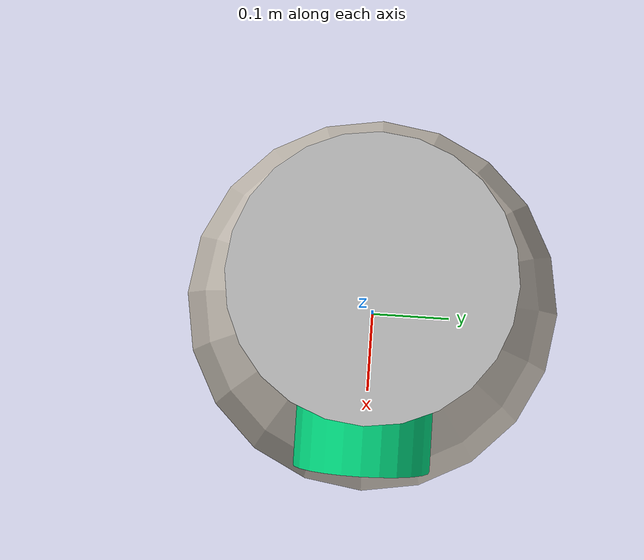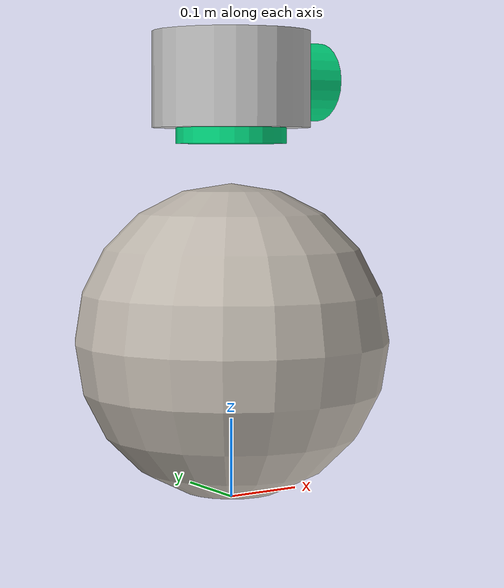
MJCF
<mujoco model="jumping_ball">
  <compiler meshdir="./" texturedir="./" />
  <asset>
    <texture name="body" type="cube" gridsize="2 3" gridlayout = "ULFRBD" file="jumping_ball_body.png"/>
    <material name="body" texture="body"/>
  </asset>

  <default>
    <mesh scale=".01 .01 .01"/>
    <geom contype="1" conaffinity="1" condim="4" friction=".5 .02 .02"/>
    <default class="root">
      <joint pos="0 0 0" limited="false" armature="0" damping="0" stiffness="0"/>
    </default>
    <default class="head">
      <geom type="cylinder" contype="1" conaffinity="1"/>
    </default>
    <default class="rangefinder">
      <site type="capsule" size=".05 .5" rgba="1 0 0 .4" group="4"/>
    </default>
  </default>

  <worldbody>
    <camera name="sideon" pos="0 -10 5" euler="1.0472 0 0" fovy="45" mode="trackcom"/>
    <camera name="float_far" pos="-4 0 2" xyaxes="0 -1 0 .5 0 1" mode="trackcom" fovy="90"/>
    <camera name="floating" pos="-2 0 1" xyaxes="0 -1 0 .5 0 1" mode="trackcom" fovy="90"/>
    <body pos="0 0 0.6" quat="1 0 0 -1" name="head_body">
      <body name="egocentric_camera" pos="0 0.15 0.9" zaxis="0 -0.99503719021 0.09950371902">
        <inertial pos="0 0 0" mass="1" diaginertia="1 1 1"/>
        <joint name="camera_height" type="slide" axis="0 1 0" limited="true" range="-0.5 0.5"/>
        <joint name="camera_tilt" type="hinge" axis="1 0 0" limited="true" range="-0.35 0.35"/>
        <camera name="egocentric" fovy="80"/>
      </body>
      <camera name="tracking" pos="1.5 1.5 .7" xyaxes="-1 1 0 -1 -1 4" mode="trackcom"/>
      <joint name="steer" type="hinge" axis="0 0 -1" class="root" damping="4"/>

      <inertial pos="0 0 -0.08" quat="0.05876879 0.70466036 -0.05876879 0.70466036" mass="20" diaginertia="0.14683229 0.10987294 0.10986016"/>
      <geom name="head" class="head" size="0.1 0.06" pos="0 0 -0.07" rgba="0.757 0.757 0.757 1.0"/>
      <geom name="face" class="head" size="0.05 0.035" zaxis="0 1 0" pos="0 0.1 -0.07" rgba="0.0 0.85 0.5 1.0"/>
      <geom name="neck" class="head" size="0.07 0.02" pos="0 0 -0.13" rgba="0.0 0.85 0.5 1.0"/>

      <site name="torso_site" pos="0 0 0" size="0.05" rgba="1 0 0 1" group="4"/>

      <site name="rf_xp" class="rangefinder" pos="0 0 -0.07" zaxis="0 1 0"/>
      <site name="rf_xpd_10" class="rangefinder" pos="0 0 -0.07" xyaxes="0 -1 -5.6713 -1 0 0"/>  <!-- 10 degree -->
      <site name="rf_xpd_20" class="rangefinder" pos="0 0 -0.07" xyaxes="0 -1 -2.7475 -1 0 0"/>  <!-- 20 degree -->
      <site name="rf_xpd_30" class="rangefinder" pos="0 0 -0.07" xyaxes="0 -1 -1.7321 -1 0 0"/>  <!-- 30 degree -->
      <site name="rf_xpd_40" class="rangefinder" pos="0 0 -0.07" xyaxes="0 -1 -1.1918 -1 0 0"/>  <!-- 40 degree -->
      <site name="rf_xpd_50" class="rangefinder" pos="0 0 -0.07" xyaxes="0 -1 -0.8391 -1 0 0"/>  <!-- 50 degree -->
      <site name="rf_xpd_60" class="rangefinder" pos="0 0 -0.07" xyaxes="0 -1 -0.5774 -1 0 0"/>  <!-- 60 degree -->
      <site name="rf_xpyp" class="rangefinder" pos="0 0 -0.07" zaxis="-1 1 0"/>
      <site name="rf_xpyn" class="rangefinder" pos="0 0 -0.07"  zaxis="1 1 0"/>

      <body pos="0 0 -.4" name="torso">
        <!-- wheel -->
        <joint name="kick" type="slide" damping="100" limited="true" range="0 .4" axis="0 0 -1" stiffness="0" solimplimit=".95 .99 .001" springref="-.4"/>
        <joint name="roll" type="hinge" axis="-1 0 0" damping="2"/>
        <geom name="shell" type="sphere" size=".2" material="body" mass="1"/>
      </body>
    </body>
  </worldbody>

  <sensor>
    <velocimeter site="torso_site" name="sensor_torso_vel"/>
    <gyro site="torso_site" name="sensor_torso_gyro"/>
    <accelerometer site="torso_site" name="sensor_torso_accel"/>
    <rangefinder name="rf_xp" site="rf_xp"/>
    <rangefinder name="rf_xpd_10" site="rf_xpd_10"/>
    <rangefinder name="rf_xpd_20" site="rf_xpd_20"/>
    <rangefinder name="rf_xpd_30" site="rf_xpd_30"/>
    <rangefinder name="rf_xpd_40" site="rf_xpd_40"/>
    <rangefinder name="rf_xpd_50" site="rf_xpd_50"/>
    <rangefinder name="rf_xpd_60" site="rf_xpd_60"/>
    <rangefinder name="rf_xpyp" site="rf_xpyp"/>
    <rangefinder name="rf_xpyn" site="rf_xpyn"/>
  </sensor>

  <actuator>
    <general name="roll" joint="roll" ctrlrange="-1 1" ctrllimited="true" gear="-50" biasprm="0" biastype="affine"/>
    <motor name="steer" joint="steer" ctrlrange="-1 1" ctrllimited="true" gear="30"/>
    <general name="kick" joint="kick" ctrlrange="-1 1" ctrllimited="true" gear="1000" biasprm="0" biastype="affine"/>
    <velocity name="camera_height" joint="camera_height" ctrlrange="-1 1" ctrllimited="true"/>
    <velocity name="camera_tilt" joint="camera_tilt" ctrlrange="-1 1" ctrllimited="true"/>
  </actuator>
</mujoco>
